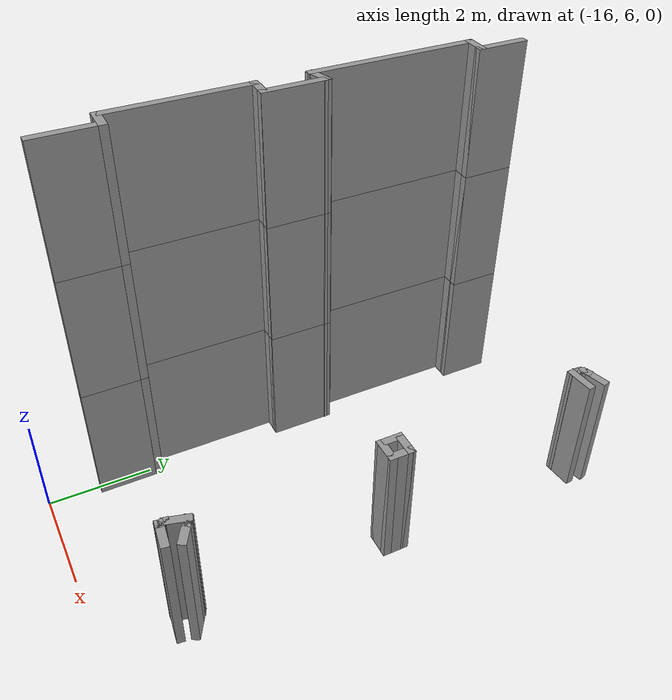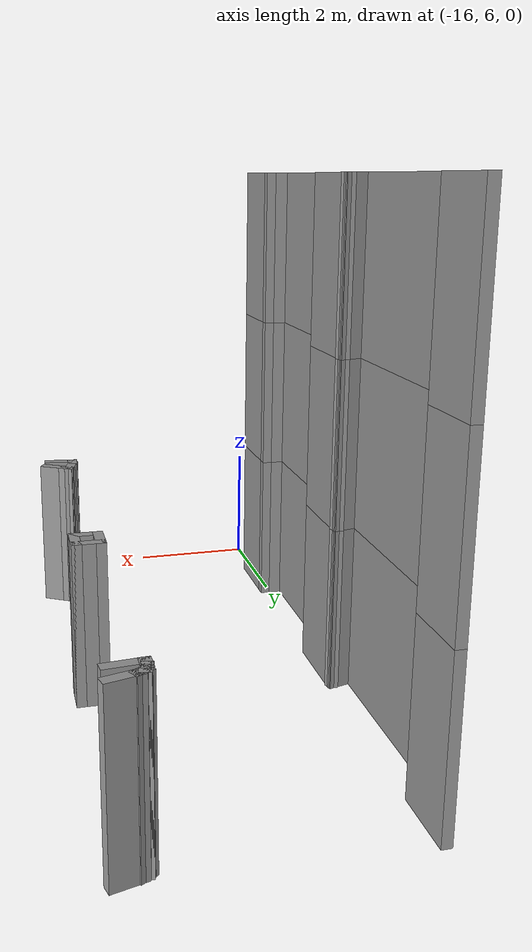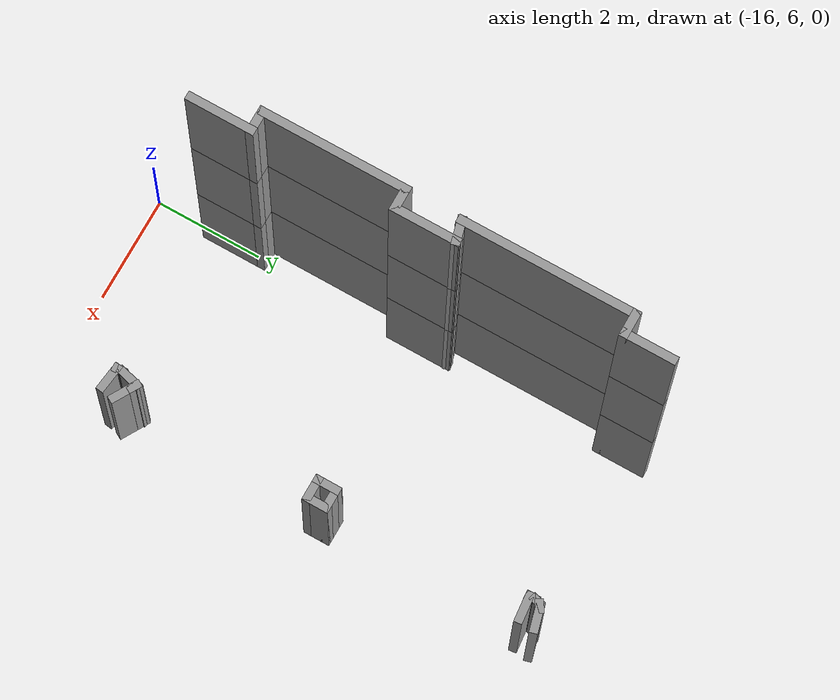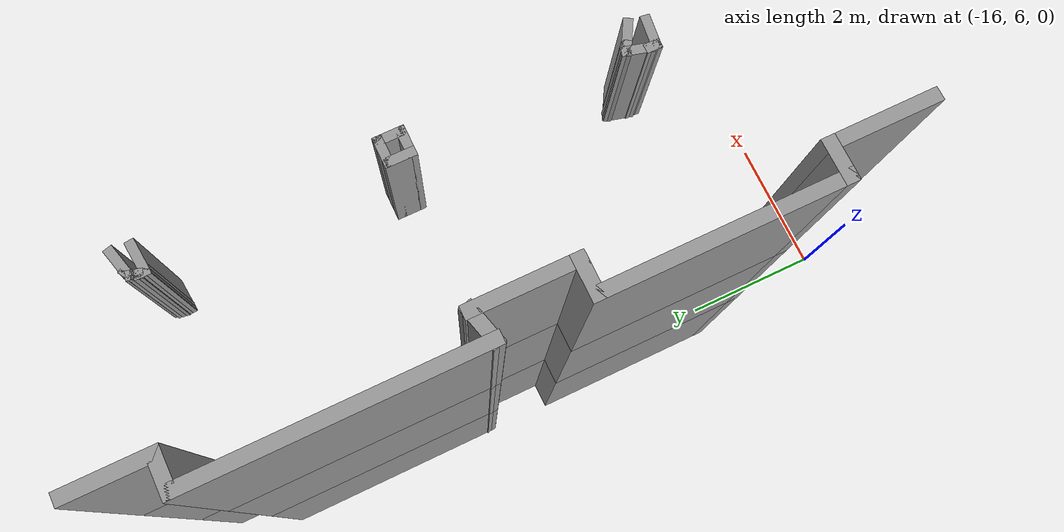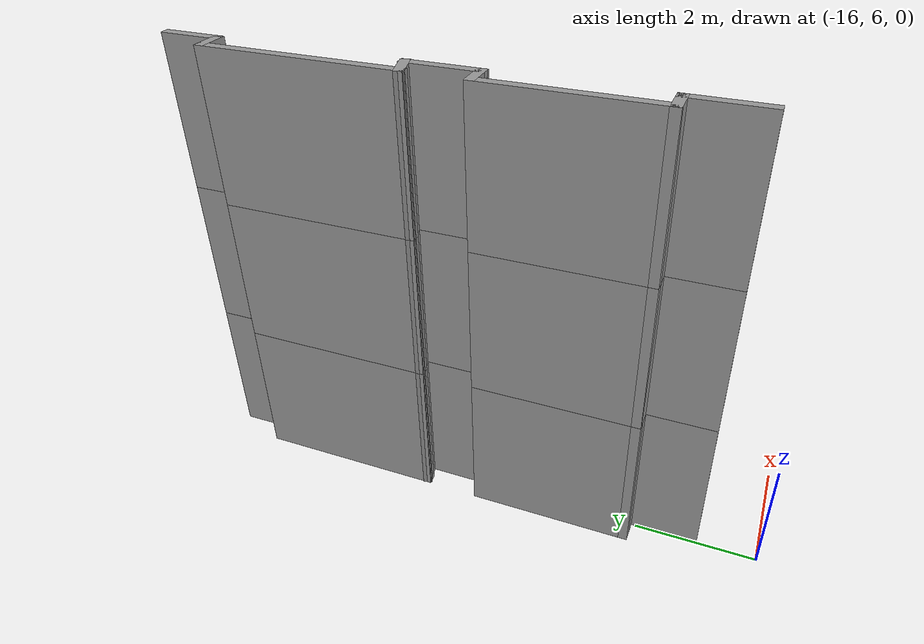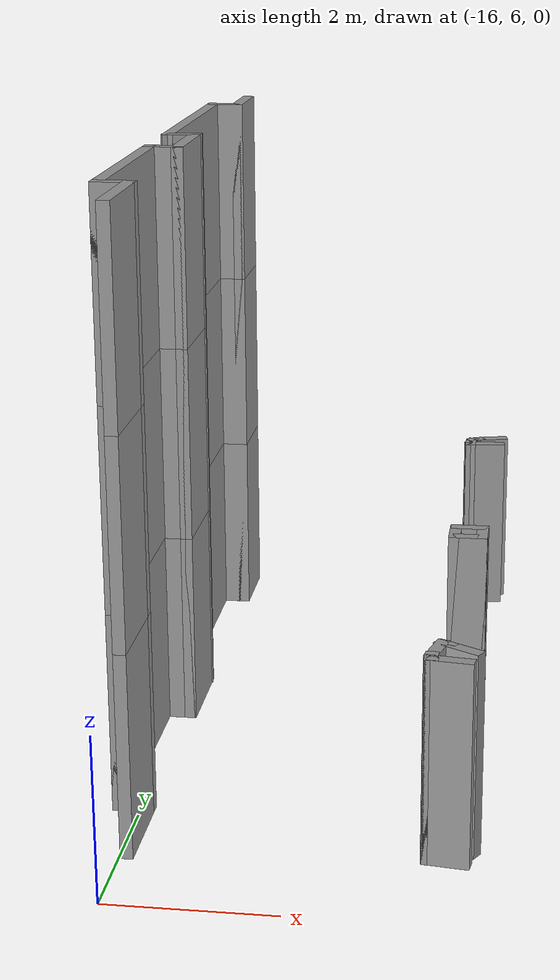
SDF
<sdf version="1.7">
 <model name="mapagazebo">
  <pose>-4.67869 9.01252 0 0 -0 0</pose>
  <link name="Wall_1108">
   <collision name="Wall_1108_Collision">
    <geometry><box><size>1.25 0.15 2.5</size></box></geometry>
    <pose>0 0 1.25 0 -0 0</pose>
   </collision>
   <visual name="Wall_1108_Visual">
    <pose>0 0 1.25 0 -0 0</pose>
    <geometry><box><size>1.25 0.15 2.5</size></box></geometry>
    <material>
     <script><uri>file://media/materials/scripts/gazebo.material</uri><name>Gazebo/Grey</name></script>
     <ambient>1 1 1 1</ambient>
    </material>
    <meta><layer>1</layer></meta>
   </visual>
   <pose>-11.2346 -1.40647 2.5 0 -0 1.5708</pose>
  </link>
  <link name="Wall_1109">
   <collision name="Wall_1109_Collision">
    <geometry><box><size>0.5 0.15 2.5</size></box></geometry>
    <pose>0 0 1.25 0 -0 0</pose>
   </collision>
   <visual name="Wall_1109_Visual">
    <pose>0 0 1.25 0 -0 0</pose>
    <geometry><box><size>0.5 0.15 2.5</size></box></geometry>
    <material>
     <script><uri>file://media/materials/scripts/gazebo.material</uri><name>Gazebo/Grey</name></script>
     <ambient>1 1 1 1</ambient>
    </material>
    <meta><layer>1</layer></meta>
   </visual>
   <pose>-11.4096 -0.856474 2.5 0 -0 3.14159</pose>
  </link>
  <link name="Wall_1110">
   <collision name="Wall_1110_Collision">
    <geometry><box><size>2.75 0.15 2.5</size></box></geometry>
    <pose>0 0 1.25 0 -0 0</pose>
   </collision>
   <visual name="Wall_1110_Visual">
    <pose>0 0 1.25 0 -0 0</pose>
    <geometry><box><size>2.75 0.15 2.5</size></box></geometry>
    <material>
     <script><uri>file://media/materials/scripts/gazebo.material</uri><name>Gazebo/Grey</name></script>
     <ambient>1 1 1 1</ambient>
    </material>
    <meta><layer>1</layer></meta>
   </visual>
   <pose>-11.5846 0.443526 2.5 0 -0 1.5708</pose>
  </link>
  <link name="Wall_1111">
   <collision name="Wall_1111_Collision">
    <geometry><box><size>0.5 0.15 2.5</size></box></geometry>
    <pose>0 0 1.25 0 -0 0</pose>
   </collision>
   <visual name="Wall_1111_Visual">
    <pose>0 0 1.25 0 -0 0</pose>
    <geometry><box><size>0.5 0.15 2.5</size></box></geometry>
    <material>
     <script><uri>file://media/materials/scripts/gazebo.material</uri><name>Gazebo/Grey</name></script>
     <ambient>1 1 1 1</ambient>
    </material>
    <meta><layer>1</layer></meta>
   </visual>
   <pose>-11.4096 1.74353 2.5 0 -0 0</pose>
  </link>
  <link name="Wall_1112">
   <collision name="Wall_1112_Collision">
    <geometry><box><size>1.25 0.15 2.5</size></box></geometry>
    <pose>0 0 1.25 0 -0 0</pose>
   </collision>
   <visual name="Wall_1112_Visual">
    <pose>0 0 1.25 0 -0 0</pose>
    <geometry><box><size>1.25 0.15 2.5</size></box></geometry>
    <material>
     <script><uri>file://media/materials/scripts/gazebo.material</uri><name>Gazebo/Grey</name></script>
     <ambient>1 1 1 1</ambient>
    </material>
    <meta><layer>1</layer></meta>
   </visual>
   <pose>-11.2346 2.29353 2.5 0 -0 1.5708</pose>
  </link>
  <link name="Wall_1113">
   <collision name="Wall_1113_Collision">
    <geometry><box><size>0.5 0.15 2.5</size></box></geometry>
    <pose>0 0 1.25 0 -0 0</pose>
   </collision>
   <visual name="Wall_1113_Visual">
    <pose>0 0 1.25 0 -0 0</pose>
    <geometry><box><size>0.5 0.15 2.5</size></box></geometry>
    <material>
     <script><uri>file://media/materials/scripts/gazebo.material</uri><name>Gazebo/Grey</name></script>
     <ambient>1 1 1 1</ambient>
    </material>
    <meta><layer>1</layer></meta>
   </visual>
   <pose>-11.4036 2.79823 2.5 0 -0 -2.87979</pose>
  </link>
  <link name="Wall_1114">
   <collision name="Wall_1114_Collision">
    <geometry><box><size>3.25 0.15 2.5</size></box></geometry>
    <pose>0 0 1.25 0 -0 0</pose>
   </collision>
   <visual name="Wall_1114_Visual">
    <pose>0 0 1.25 0 -0 0</pose>
    <geometry><box><size>3.25 0.15 2.5</size></box></geometry>
    <material>
     <script><uri>file://media/materials/scripts/gazebo.material</uri><name>Gazebo/Grey</name></script>
     <ambient>1 1 1 1</ambient>
    </material>
    <meta><layer>1</layer></meta>
   </visual>
   <pose>-11.5727 4.30294 2.5 0 -0 1.5708</pose>
  </link>
  <link name="Wall_1115">
   <collision name="Wall_1115_Collision">
    <geometry><box><size>0.5 0.15 2.5</size></box></geometry>
    <pose>0 0 1.25 0 -0 0</pose>
   </collision>
   <visual name="Wall_1115_Visual">
    <pose>0 0 1.25 0 -0 0</pose>
    <geometry><box><size>0.5 0.15 2.5</size></box></geometry>
    <material>
     <script><uri>file://media/materials/scripts/gazebo.material</uri><name>Gazebo/Grey</name></script>
     <ambient>1 1 1 1</ambient>
    </material>
    <meta><layer>1</layer></meta>
   </visual>
   <pose>-11.3977 5.85294 2.5 0 -0 0</pose>
  </link>
  <link name="Wall_1116">
   <collision name="Wall_1116_Collision">
    <geometry><box><size>1 0.15 2.5</size></box></geometry>
    <pose>0 0 1.25 0 -0 0</pose>
   </collision>
   <visual name="Wall_1116_Visual">
    <pose>0 0 1.25 0 -0 0</pose>
    <geometry><box><size>1 0.15 2.5</size></box></geometry>
    <material>
     <script><uri>file://media/materials/scripts/gazebo.material</uri><name>Gazebo/Grey</name></script>
     <ambient>1 1 1 1</ambient>
    </material>
    <meta><layer>1</layer></meta>
   </visual>
   <pose>-11.2227 6.27794 2.5 0 -0 1.5708</pose>
  </link>
  <link name="Wall_1732">
   <collision name="Wall_1732_Collision">
    <geometry><box><size>1.25 0.15 2.5</size></box></geometry>
    <pose>0 0 1.25 0 -0 0</pose>
   </collision>
   <visual name="Wall_1732_Visual">
    <pose>0 0 1.25 0 -0 0</pose>
    <geometry><box><size>1.25 0.15 2.5</size></box></geometry>
    <material>
     <script><uri>file://media/materials/scripts/gazebo.material</uri><name>Gazebo/Grey</name></script>
     <ambient>1 1 1 1</ambient>
    </material>
    <meta><layer>2</layer></meta>
   </visual>
   <pose>-11.2346 -1.40647 5 0 -0 1.5708</pose>
  </link>
  <link name="Wall_1733">
   <collision name="Wall_1733_Collision">
    <geometry><box><size>0.5 0.15 2.5</size></box></geometry>
    <pose>0 0 1.25 0 -0 0</pose>
   </collision>
   <visual name="Wall_1733_Visual">
    <pose>0 0 1.25 0 -0 0</pose>
    <geometry><box><size>0.5 0.15 2.5</size></box></geometry>
    <material>
     <script><uri>file://media/materials/scripts/gazebo.material</uri><name>Gazebo/Grey</name></script>
     <ambient>1 1 1 1</ambient>
    </material>
    <meta><layer>2</layer></meta>
   </visual>
   <pose>-11.4096 -0.856474 5 0 -0 3.14159</pose>
  </link>
  <link name="Wall_1734">
   <collision name="Wall_1734_Collision">
    <geometry><box><size>2.75 0.15 2.5</size></box></geometry>
    <pose>0 0 1.25 0 -0 0</pose>
   </collision>
   <visual name="Wall_1734_Visual">
    <pose>0 0 1.25 0 -0 0</pose>
    <geometry><box><size>2.75 0.15 2.5</size></box></geometry>
    <material>
     <script><uri>file://media/materials/scripts/gazebo.material</uri><name>Gazebo/Grey</name></script>
     <ambient>1 1 1 1</ambient>
    </material>
    <meta><layer>2</layer></meta>
   </visual>
   <pose>-11.5846 0.443526 5 0 -0 1.5708</pose>
  </link>
  <link name="Wall_1735">
   <collision name="Wall_1735_Collision">
    <geometry><box><size>0.5 0.15 2.5</size></box></geometry>
    <pose>0 0 1.25 0 -0 0</pose>
   </collision>
   <visual name="Wall_1735_Visual">
    <pose>0 0 1.25 0 -0 0</pose>
    <geometry><box><size>0.5 0.15 2.5</size></box></geometry>
    <material>
     <script><uri>file://media/materials/scripts/gazebo.material</uri><name>Gazebo/Grey</name></script>
     <ambient>1 1 1 1</ambient>
    </material>
    <meta><layer>2</layer></meta>
   </visual>
   <pose>-11.4096 1.74353 5 0 -0 0</pose>
  </link>
  <link name="Wall_1736">
   <collision name="Wall_1736_Collision">
    <geometry><box><size>1.25 0.15 2.5</size></box></geometry>
    <pose>0 0 1.25 0 -0 0</pose>
   </collision>
   <visual name="Wall_1736_Visual">
    <pose>0 0 1.25 0 -0 0</pose>
    <geometry><box><size>1.25 0.15 2.5</size></box></geometry>
    <material>
     <script><uri>file://media/materials/scripts/gazebo.material</uri><name>Gazebo/Grey</name></script>
     <ambient>1 1 1 1</ambient>
    </material>
    <meta><layer>2</layer></meta>
   </visual>
   <pose>-11.2346 2.29353 5 0 -0 1.5708</pose>
  </link>
  <link name="Wall_1737">
   <collision name="Wall_1737_Collision">
    <geometry><box><size>0.5 0.15 2.5</size></box></geometry>
    <pose>0 0 1.25 0 -0 0</pose>
   </collision>
   <visual name="Wall_1737_Visual">
    <pose>0 0 1.25 0 -0 0</pose>
    <geometry><box><size>0.5 0.15 2.5</size></box></geometry>
    <material>
     <script><uri>file://media/materials/scripts/gazebo.material</uri><name>Gazebo/Grey</name></script>
     <ambient>1 1 1 1</ambient>
    </material>
    <meta><layer>2</layer></meta>
   </visual>
   <pose>-11.4036 2.79823 5 0 -0 -2.87979</pose>
  </link>
  <link name="Wall_1738">
   <collision name="Wall_1738_Collision">
    <geometry><box><size>3.25 0.15 2.5</size></box></geometry>
    <pose>0 0 1.25 0 -0 0</pose>
   </collision>
   <visual name="Wall_1738_Visual">
    <pose>0 0 1.25 0 -0 0</pose>
    <geometry><box><size>3.25 0.15 2.5</size></box></geometry>
    <material>
     <script><uri>file://media/materials/scripts/gazebo.material</uri><name>Gazebo/Grey</name></script>
     <ambient>1 1 1 1</ambient>
    </material>
    <meta><layer>2</layer></meta>
   </visual>
   <pose>-11.5727 4.30294 5 0 -0 1.5708</pose>
  </link>
  <link name="Wall_1739">
   <collision name="Wall_1739_Collision">
    <geometry><box><size>0.5 0.15 2.5</size></box></geometry>
    <pose>0 0 1.25 0 -0 0</pose>
   </collision>
   <visual name="Wall_1739_Visual">
    <pose>0 0 1.25 0 -0 0</pose>
    <geometry><box><size>0.5 0.15 2.5</size></box></geometry>
    <material>
     <script><uri>file://media/materials/scripts/gazebo.material</uri><name>Gazebo/Grey</name></script>
     <ambient>1 1 1 1</ambient>
    </material>
    <meta><layer>2</layer></meta>
   </visual>
   <pose>-11.3977 5.85294 5 0 -0 0</pose>
  </link>
  <link name="Wall_1740">
   <collision name="Wall_1740_Collision">
    <geometry><box><size>1 0.15 2.5</size></box></geometry>
    <pose>0 0 1.25 0 -0 0</pose>
   </collision>
   <visual name="Wall_1740_Visual">
    <pose>0 0 1.25 0 -0 0</pose>
    <geometry><box><size>1 0.15 2.5</size></box></geometry>
    <material>
     <script><uri>file://media/materials/scripts/gazebo.material</uri><name>Gazebo/Grey</name></script>
     <ambient>1 1 1 1</ambient>
    </material>
    <meta><layer>2</layer></meta>
   </visual>
   <pose>-11.2227 6.27794 5 0 -0 1.5708</pose>
  </link>
  <link name="Wall_2191">
   <collision name="Wall_2191_Collision">
    <geometry><box><size>0.5 0.15 2.5</size></box></geometry>
    <pose>0 0 1.25 0 -0 0</pose>
   </collision>
   <visual name="Wall_2191_Visual">
    <pose>0 0 1.25 0 -0 0</pose>
    <geometry><box><size>0.5 0.15 2.5</size></box></geometry>
    <material>
     <script><uri>file://media/materials/scripts/gazebo.material</uri><name>Gazebo/Grey</name></script>
     <ambient>1 1 1 1</ambient>
    </material>
    <meta><layer>0</layer></meta>
   </visual>
   <pose>-7.84104 2.40045 0 0 -0 1.5708</pose>
  </link>
  <link name="Wall_2192">
   <collision name="Wall_2192_Collision">
    <geometry><box><size>0.5 0.15 2.5</size></box></geometry>
    <pose>0 0 1.25 0 -0 0</pose>
   </collision>
   <visual name="Wall_2192_Visual">
    <pose>0 0 1.25 0 -0 0</pose>
    <geometry><box><size>0.5 0.15 2.5</size></box></geometry>
    <material>
     <script><uri>file://media/materials/scripts/gazebo.material</uri><name>Gazebo/Grey</name></script>
     <ambient>1 1 1 1</ambient>
    </material>
    <meta><layer>0</layer></meta>
   </visual>
   <pose>-7.66604 2.57545 0 0 -0 0</pose>
  </link>
  <link name="Wall_2193">
   <collision name="Wall_2193_Collision">
    <geometry><box><size>0.5 0.15 2.5</size></box></geometry>
    <pose>0 0 1.25 0 -0 0</pose>
   </collision>
   <visual name="Wall_2193_Visual">
    <pose>0 0 1.25 0 -0 0</pose>
    <geometry><box><size>0.5 0.15 2.5</size></box></geometry>
    <material>
     <script><uri>file://media/materials/scripts/gazebo.material</uri><name>Gazebo/Grey</name></script>
     <ambient>1 1 1 1</ambient>
    </material>
    <meta><layer>0</layer></meta>
   </visual>
   <pose>-7.49104 2.40045 0 0 -0 -1.5708</pose>
  </link>
  <link name="Wall_2194">
   <collision name="Wall_2194_Collision">
    <geometry><box><size>0.5 0.15 2.5</size></box></geometry>
    <pose>0 0 1.25 0 -0 0</pose>
   </collision>
   <visual name="Wall_2194_Visual">
    <pose>0 0 1.25 0 -0 0</pose>
    <geometry><box><size>0.5 0.15 2.5</size></box></geometry>
    <material>
     <script><uri>file://media/materials/scripts/gazebo.material</uri><name>Gazebo/Grey</name></script>
     <ambient>1 1 1 1</ambient>
    </material>
    <meta><layer>0</layer></meta>
   </visual>
   <pose>-7.66604 2.22545 0 0 -0 3.14159</pose>
  </link>
  <link name="Wall_2196">
   <collision name="Wall_2196_Collision">
    <geometry><box><size>0.25 0.15 2.5</size></box></geometry>
    <pose>0 0 1.25 0 -0 0</pose>
   </collision>
   <visual name="Wall_2196_Visual">
    <pose>0 0 1.25 0 -0 0</pose>
    <geometry><box><size>0.25 0.15 2.5</size></box></geometry>
    <material>
     <script><uri>file://media/materials/scripts/gazebo.material</uri><name>Gazebo/Grey</name></script>
     <ambient>1 1 1 1</ambient>
    </material>
    <meta><layer>0</layer></meta>
   </visual>
   <pose>-7.84869 -1.62149 0 0 -0 1.5708</pose>
  </link>
  <link name="Wall_2197">
   <collision name="Wall_2197_Collision">
    <geometry><box><size>0.5 0.15 2.5</size></box></geometry>
    <pose>0 0 1.25 0 -0 0</pose>
   </collision>
   <visual name="Wall_2197_Visual">
    <pose>0 0 1.25 0 -0 0</pose>
    <geometry><box><size>0.5 0.15 2.5</size></box></geometry>
    <material>
     <script><uri>file://media/materials/scripts/gazebo.material</uri><name>Gazebo/Grey</name></script>
     <ambient>1 1 1 1</ambient>
    </material>
    <meta><layer>0</layer></meta>
   </visual>
   <pose>-7.8034 -1.40245 0 0 -0 1.309</pose>
  </link>
  <link name="Wall_2198">
   <collision name="Wall_2198_Collision">
    <geometry><box><size>0.25 0.15 2.5</size></box></geometry>
    <pose>0 0 1.25 0 -0 0</pose>
   </collision>
   <visual name="Wall_2198_Visual">
    <pose>0 0 1.25 0 -0 0</pose>
    <geometry><box><size>0.25 0.15 2.5</size></box></geometry>
    <material>
     <script><uri>file://media/materials/scripts/gazebo.material</uri><name>Gazebo/Grey</name></script>
     <ambient>1 1 1 1</ambient>
    </material>
    <meta><layer>0</layer></meta>
   </visual>
   <pose>-7.7148 -1.25841 0 0 -0 -0.523599</pose>
  </link>
  <link name="Wall_2199">
   <collision name="Wall_2199_Collision">
    <geometry><box><size>0.5 0.15 2.5</size></box></geometry>
    <pose>0 0 1.25 0 -0 0</pose>
   </collision>
   <visual name="Wall_2199_Visual">
    <pose>0 0 1.25 0 -0 0</pose>
    <geometry><box><size>0.5 0.15 2.5</size></box></geometry>
    <material>
     <script><uri>file://media/materials/scripts/gazebo.material</uri><name>Gazebo/Grey</name></script>
     <ambient>1 1 1 1</ambient>
    </material>
    <meta><layer>0</layer></meta>
   </visual>
   <pose>-7.51995 -1.37091 0 0 -0 -0.523599</pose>
  </link>
  <link name="Wall_2203">
   <collision name="Wall_2203_Collision">
    <geometry><box><size>0.562728 0.15 2.5</size></box></geometry>
    <pose>0 0 1.25 0 -0 0</pose>
   </collision>
   <visual name="Wall_2203_Visual">
    <pose>0 0 1.25 0 -0 0</pose>
    <geometry><box><size>0.562728 0.15 2.5</size></box></geometry>
    <material>
     <script><uri>file://media/materials/scripts/gazebo.material</uri><name>Gazebo/Grey</name></script>
     <ambient>1 1 1 1</ambient>
    </material>
    <meta><layer>0</layer></meta>
   </visual>
   <pose>-7.6439 -1.6969 0 0 -0 3.01814</pose>
  </link>
  <link name="Wall_2204">
   <collision name="Wall_2204_Collision">
    <geometry><box><size>0.16 0.15 2.5</size></box></geometry>
    <pose>0 0 1.25 0 -0 0</pose>
   </collision>
   <visual name="Wall_2204_Visual">
    <pose>0 0 1.25 0 -0 0</pose>
    <geometry><box><size>0.16 0.15 2.5</size></box></geometry>
    <material>
     <script><uri>file://media/materials/scripts/gazebo.material</uri><name>Gazebo/Grey</name></script>
     <ambient>1 1 1 1</ambient>
    </material>
    <meta><layer>0</layer></meta>
   </visual>
   <pose>-7.84369 -1.67149 0 0 -0 0</pose>
  </link>
  <link name="Wall_2244">
   <collision name="Wall_2244_Collision">
    <geometry><box><size>0.25 0.15 2.5</size></box></geometry>
    <pose>0 0 1.25 0 -0 0</pose>
   </collision>
   <visual name="Wall_2244_Visual">
    <pose>0 0 1.25 0 -0 0</pose>
    <geometry><box><size>0.25 0.15 2.5</size></box></geometry>
    <material>
     <script><uri>file://media/materials/scripts/gazebo.material</uri><name>Gazebo/Grey</name></script>
     <ambient>1 1 1 1</ambient>
    </material>
    <meta><layer>0</layer></meta>
   </visual>
   <pose>-7.85704 6.3033 0 0 -0 1.5708</pose>
  </link>
  <link name="Wall_2245">
   <collision name="Wall_2245_Collision">
    <geometry><box><size>0.25 0.15 2.5</size></box></geometry>
    <pose>0 0 1.25 0 -0 0</pose>
   </collision>
   <visual name="Wall_2245_Visual">
    <pose>0 0 1.25 0 -0 0</pose>
    <geometry><box><size>0.25 0.15 2.5</size></box></geometry>
    <material>
     <script><uri>file://media/materials/scripts/gazebo.material</uri><name>Gazebo/Grey</name></script>
     <ambient>1 1 1 1</ambient>
    </material>
    <meta><layer>0</layer></meta>
   </visual>
   <pose>-7.8441 6.40159 0 0 -0 1.309</pose>
  </link>
  <link name="Wall_2246">
   <collision name="Wall_2246_Collision">
    <geometry><box><size>0.25 0.15 2.5</size></box></geometry>
    <pose>0 0 1.25 0 -0 0</pose>
   </collision>
   <visual name="Wall_2246_Visual">
    <pose>0 0 1.25 0 -0 0</pose>
    <geometry><box><size>0.25 0.15 2.5</size></box></geometry>
    <material>
     <script><uri>file://media/materials/scripts/gazebo.material</uri><name>Gazebo/Grey</name></script>
     <ambient>1 1 1 1</ambient>
    </material>
    <meta><layer>0</layer></meta>
   </visual>
   <pose>-7.8441 6.40159 0 0 -0 -1.8326</pose>
  </link>
  <link name="Wall_2247">
   <collision name="Wall_2247_Collision">
    <geometry><box><size>0.25 0.15 2.5</size></box></geometry>
    <pose>0 0 1.25 0 -0 0</pose>
   </collision>
   <visual name="Wall_2247_Visual">
    <pose>0 0 1.25 0 -0 0</pose>
    <geometry><box><size>0.25 0.15 2.5</size></box></geometry>
    <material>
     <script><uri>file://media/materials/scripts/gazebo.material</uri><name>Gazebo/Grey</name></script>
     <ambient>1 1 1 1</ambient>
    </material>
    <meta><layer>0</layer></meta>
   </visual>
   <pose>-7.8441 6.40159 0 0 -0 1.309</pose>
  </link>
  <link name="Wall_2248">
   <collision name="Wall_2248_Collision">
    <geometry><box><size>0.25 0.15 2.5</size></box></geometry>
    <pose>0 0 1.25 0 -0 0</pose>
   </collision>
   <visual name="Wall_2248_Visual">
    <pose>0 0 1.25 0 -0 0</pose>
    <geometry><box><size>0.25 0.15 2.5</size></box></geometry>
    <material>
     <script><uri>file://media/materials/scripts/gazebo.material</uri><name>Gazebo/Grey</name></script>
     <ambient>1 1 1 1</ambient>
    </material>
    <meta><layer>0</layer></meta>
   </visual>
   <pose>-7.78786 6.47489 0 0 -0 0.523599</pose>
  </link>
  <link name="Wall_2249">
   <collision name="Wall_2249_Collision">
    <geometry><box><size>0.5 0.15 2.5</size></box></geometry>
    <pose>0 0 1.25 0 -0 0</pose>
   </collision>
   <visual name="Wall_2249_Visual">
    <pose>0 0 1.25 0 -0 0</pose>
    <geometry><box><size>0.5 0.15 2.5</size></box></geometry>
    <material>
     <script><uri>file://media/materials/scripts/gazebo.material</uri><name>Gazebo/Grey</name></script>
     <ambient>1 1 1 1</ambient>
    </material>
    <meta><layer>0</layer></meta>
   </visual>
   <pose>-7.57552 6.54518 0 0 -0 0.261799</pose>
  </link>
  <link name="Wall_2255">
   <collision name="Wall_2255_Collision">
    <geometry><box><size>0.576612 0.15 2.5</size></box></geometry>
    <pose>0 0 1.25 0 -0 0</pose>
   </collision>
   <visual name="Wall_2255_Visual">
    <pose>0 0 1.25 0 -0 0</pose>
    <geometry><box><size>0.576612 0.15 2.5</size></box></geometry>
    <material>
     <script><uri>file://media/materials/scripts/gazebo.material</uri><name>Gazebo/Grey</name></script>
     <ambient>1 1 1 1</ambient>
    </material>
    <meta><layer>0</layer></meta>
   </visual>
   <pose>-7.64471 6.27359 0 0 -0 -3.04631</pose>
  </link>
  <link name="Wall_413">
   <collision name="Wall_413_Collision">
    <geometry><box><size>1.25 0.15 2.5</size></box></geometry>
    <pose>0 0 1.25 0 -0 0</pose>
   </collision>
   <visual name="Wall_413_Visual">
    <pose>0 0 1.25 0 -0 0</pose>
    <geometry><box><size>1.25 0.15 2.5</size></box></geometry>
    <material>
     <script><uri>file://media/materials/scripts/gazebo.material</uri><name>Gazebo/Grey</name></script>
     <ambient>1 1 1 1</ambient>
    </material>
    <meta><layer>0</layer></meta>
   </visual>
   <pose>-11.2346 -1.40647 0 0 -0 1.5708</pose>
  </link>
  <link name="Wall_414">
   <collision name="Wall_414_Collision">
    <geometry><box><size>0.5 0.15 2.5</size></box></geometry>
    <pose>0 0 1.25 0 -0 0</pose>
   </collision>
   <visual name="Wall_414_Visual">
    <pose>0 0 1.25 0 -0 0</pose>
    <geometry><box><size>0.5 0.15 2.5</size></box></geometry>
    <material>
     <script><uri>file://media/materials/scripts/gazebo.material</uri><name>Gazebo/Grey</name></script>
     <ambient>1 1 1 1</ambient>
    </material>
    <meta><layer>0</layer></meta>
   </visual>
   <pose>-11.4096 -0.856473 0 0 -0 3.14159</pose>
  </link>
  <link name="Wall_415">
   <collision name="Wall_415_Collision">
    <geometry><box><size>2.75 0.15 2.5</size></box></geometry>
    <pose>0 0 1.25 0 -0 0</pose>
   </collision>
   <visual name="Wall_415_Visual">
    <pose>0 0 1.25 0 -0 0</pose>
    <geometry><box><size>2.75 0.15 2.5</size></box></geometry>
    <material>
     <script><uri>file://media/materials/scripts/gazebo.material</uri><name>Gazebo/Grey</name></script>
     <ambient>1 1 1 1</ambient>
    </material>
    <meta><layer>0</layer></meta>
   </visual>
   <pose>-11.5846 0.443526 0 0 -0 1.5708</pose>
  </link>
  <link name="Wall_416">
   <collision name="Wall_416_Collision">
    <geometry><box><size>0.5 0.15 2.5</size></box></geometry>
    <pose>0 0 1.25 0 -0 0</pose>
   </collision>
   <visual name="Wall_416_Visual">
    <pose>0 0 1.25 0 -0 0</pose>
    <geometry><box><size>0.5 0.15 2.5</size></box></geometry>
    <material>
     <script><uri>file://media/materials/scripts/gazebo.material</uri><name>Gazebo/Grey</name></script>
     <ambient>1 1 1 1</ambient>
    </material>
    <meta><layer>0</layer></meta>
   </visual>
   <pose>-11.4096 1.74353 0 0 -0 0</pose>
  </link>
  <link name="Wall_417">
   <collision name="Wall_417_Collision">
    <geometry><box><size>1.25 0.15 2.5</size></box></geometry>
    <pose>0 0 1.25 0 -0 0</pose>
   </collision>
   <visual name="Wall_417_Visual">
    <pose>0 0 1.25 0 -0 0</pose>
    <geometry><box><size>1.25 0.15 2.5</size></box></geometry>
    <material>
     <script><uri>file://media/materials/scripts/gazebo.material</uri><name>Gazebo/Grey</name></script>
     <ambient>1 1 1 1</ambient>
    </material>
    <meta><layer>0</layer></meta>
   </visual>
   <pose>-11.2346 2.29353 0 0 -0 1.5708</pose>
  </link>
  <link name="Wall_418">
   <collision name="Wall_418_Collision">
    <geometry><box><size>0.5 0.15 2.5</size></box></geometry>
    <pose>0 0 1.25 0 -0 0</pose>
   </collision>
   <visual name="Wall_418_Visual">
    <pose>0 0 1.25 0 -0 0</pose>
    <geometry><box><size>0.5 0.15 2.5</size></box></geometry>
    <material>
     <script><uri>file://media/materials/scripts/gazebo.material</uri><name>Gazebo/Grey</name></script>
     <ambient>1 1 1 1</ambient>
    </material>
    <meta><layer>0</layer></meta>
   </visual>
   <pose>-11.4036 2.79823 0 0 -0 -2.87979</pose>
  </link>
  <link name="Wall_419">
   <collision name="Wall_419_Collision">
    <geometry><box><size>3.25 0.15 2.5</size></box></geometry>
    <pose>0 0 1.25 0 -0 0</pose>
   </collision>
   <visual name="Wall_419_Visual">
    <pose>0 0 1.25 0 -0 0</pose>
    <geometry><box><size>3.25 0.15 2.5</size></box></geometry>
    <material>
     <script><uri>file://media/materials/scripts/gazebo.material</uri><name>Gazebo/Grey</name></script>
     <ambient>1 1 1 1</ambient>
    </material>
    <meta><layer>0</layer></meta>
   </visual>
   <pose>-11.5727 4.30294 0 0 -0 1.5708</pose>
  </link>
  <link name="Wall_420">
   <collision name="Wall_420_Collision">
    <geometry><box><size>0.5 0.15 2.5</size></box></geometry>
    <pose>0 0 1.25 0 -0 0</pose>
   </collision>
   <visual name="Wall_420_Visual">
    <pose>0 0 1.25 0 -0 0</pose>
    <geometry><box><size>0.5 0.15 2.5</size></box></geometry>
    <material>
     <script><uri>file://media/materials/scripts/gazebo.material</uri><name>Gazebo/Grey</name></script>
     <ambient>1 1 1 1</ambient>
    </material>
    <meta><layer>0</layer></meta>
   </visual>
   <pose>-11.3977 5.85294 0 0 -0 0</pose>
  </link>
  <link name="Wall_421">
   <collision name="Wall_421_Collision">
    <geometry><box><size>1 0.15 2.5</size></box></geometry>
    <pose>0 0 1.25 0 -0 0</pose>
   </collision>
   <visual name="Wall_421_Visual">
    <pose>0 0 1.25 0 -0 0</pose>
    <geometry><box><size>1 0.15 2.5</size></box></geometry>
    <material>
     <script><uri>file://media/materials/scripts/gazebo.material</uri><name>Gazebo/Grey</name></script>
     <ambient>1 1 1 1</ambient>
    </material>
    <meta><layer>0</layer></meta>
   </visual>
   <pose>-11.2227 6.27794 0 0 -0 1.5708</pose>
  </link>
  <static>1</static>
 </model>
</sdf>
